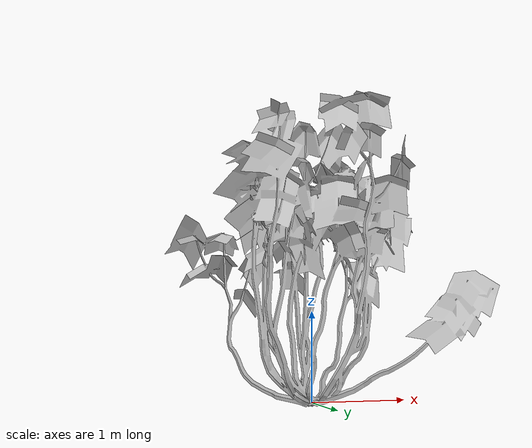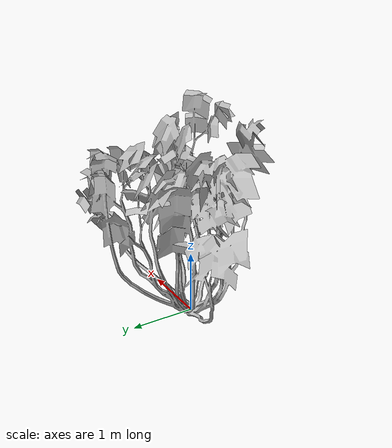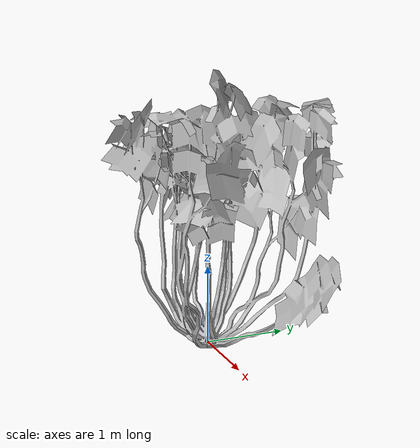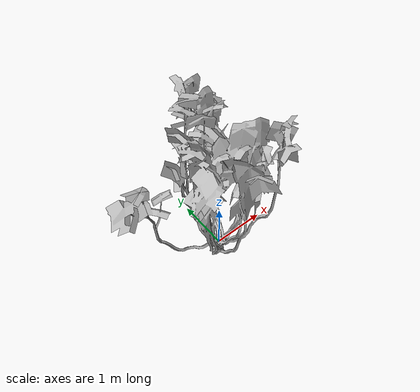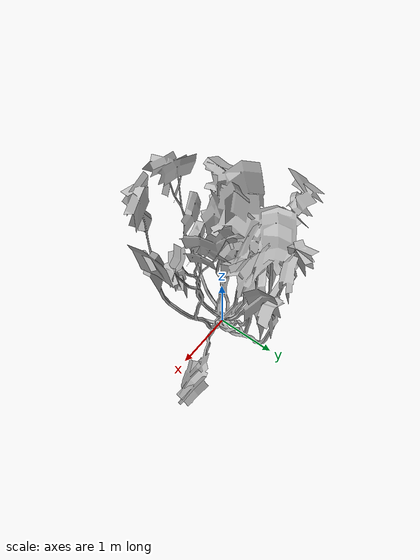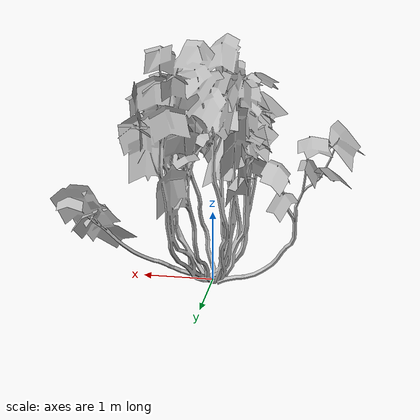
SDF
<?xml version="1.0" ?>
<sdf version="1.5">
  <model name="Bush 4">
     <static>true</static>
    <pose frame=''>0 0 0 1.57079 0 0</pose>
    <link name="link">
      <pose frame=''>0 0 0 0 0 0</pose>
      <collision name="collision">
        <geometry>
          <mesh>
            <scale>5 5 5</scale>
            <uri>model://bush_4/meshes/bush_4.obj</uri>
          </mesh>
        </geometry>
      </collision>
      <visual name="visual">
        <geometry>
          <mesh>

            <scale>5 5 5</scale>
            <uri>model://bush_4/meshes/bush_4.obj</uri>
          </mesh>
        </geometry>
      </visual>
    </link>
  </model>
</sdf>
